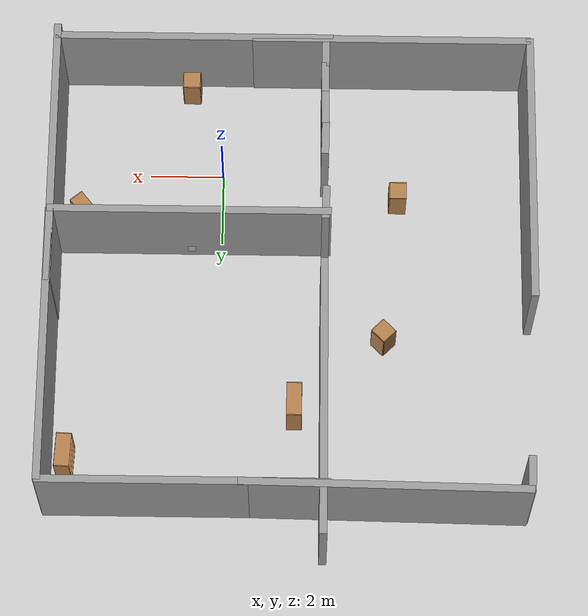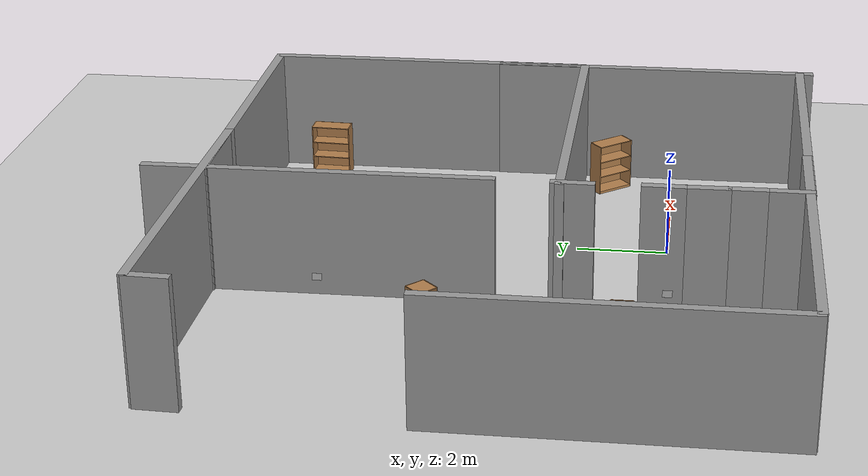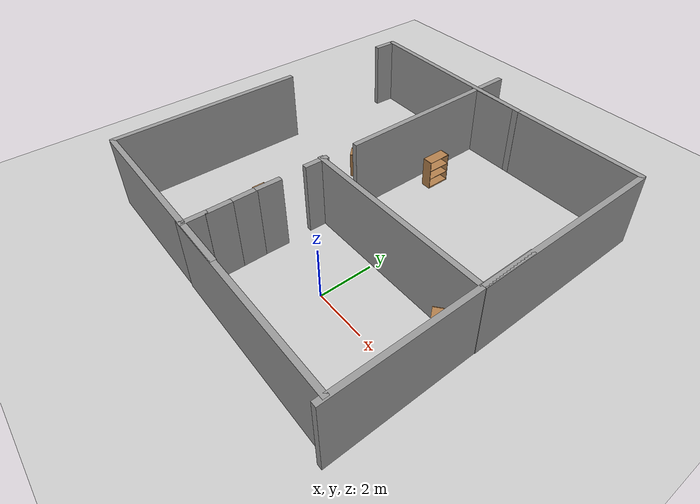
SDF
<sdf version="1.4">
 <world name="default">
  <model name="character">
   <static>1</static>
   <link name="cluedo_character::link">
    <collision name="collision">
     <geometry><plane><normal>0 0 1</normal><size>0.21 0.297</size></plane></geometry>
     <surface><friction><ode><mu>100</mu><mu2>50</mu2></ode></friction></surface>
    </collision>
    <visual name="visual">
     <pose>0.80183 2.31118 0.4 1.57159 0.00159265 3.14159</pose>
     <cast_shadows>0</cast_shadows>
     <geometry><plane><normal>0 0 1</normal><size>0.21 0.297</size></plane></geometry>
     <material>
      <script>
       <uri>model://cluedo_character/materials/scripts</uri>
       <uri>model://cluedo_character/materials/textures</uri>
       <name>Cluedo_character/Image</name>
      </script>
     </material>
    </visual>
    <velocity_decay><linear>0</linear><angular>0</angular></velocity_decay>
   </link>
  </model>
  <light name="sun" type="directional">
   <pose>1 3 1 0 -0 0</pose>
   <diffuse>0.8 0.8 0.8 1</diffuse>
   <specular>1 1 1 1</specular>
   <attenuation>
    <range>1000</range>
    <constant>0.9</constant>
    <linear>0.01</linear>
    <quadratic>0.001</quadratic>
   </attenuation>
   <direction>-0 0 -1</direction>
  </light>
  <light name="light_a" type="point">
   <cast_shadows>0</cast_shadows>
   <pose>1 3 1 0 -0 0</pose>
   <diffuse>0.2 0.2 0.2 1</diffuse>
   <specular>1 1 1 1</specular>
   <attenuation>
    <range>1000</range>
    <constant>0.9</constant>
    <linear>0.01</linear>
    <quadratic>0.001</quadratic>
   </attenuation>
   <direction>0 0 -1</direction>
  </light>
  <light name="light_b" type="point">
   <cast_shadows>0</cast_shadows>
   <pose>-7 6 1 0 -0 0</pose>
   <diffuse>0.2 0.2 0.2 0.2</diffuse>
   <specular>0.2 0.2 0.2 0.2</specular>
   <attenuation>
    <range>1000</range>
    <constant>0.9</constant>
    <linear>0.01</linear>
    <quadratic>0.001</quadratic>
   </attenuation>
   <direction>0 0 -1</direction>
  </light>
  <light name="light_c" type="point">
   <cast_shadows>0</cast_shadows>
   <pose>-2.3 6 1 0 -0 0</pose>
   <diffuse>0.2 0.2 0.2 1</diffuse>
   <specular>1 1 1 1</specular>
   <attenuation>
    <range>1000</range>
    <constant>0.9</constant>
    <linear>0.01</linear>
    <quadratic>0.001</quadratic>
   </attenuation>
   <direction>0 0 -1</direction>
  </light>
  <light name="light_d" type="point">
   <cast_shadows>0</cast_shadows>
   <pose>-7 2 1 0 -0 0</pose>
   <diffuse>0.2 0.2 0.2 1</diffuse>
   <specular>1 1 1 1</specular>
   <attenuation>
    <range>1000</range>
    <constant>0.9</constant>
    <linear>0.01</linear>
    <quadratic>0.001</quadratic>
   </attenuation>
   <direction>0 0 -1</direction>
  </light>
  <model name="ground_plane">
   <static>1</static>
   <link name="link">
    <collision name="collision">
     <geometry><plane><normal>0 0 1</normal><size>100 100</size></plane></geometry>
     <surface><friction><ode><mu>100</mu><mu2>50</mu2></ode></friction></surface>
    </collision>
    <visual name="visual">
     <cast_shadows>0</cast_shadows>
     <geometry><plane><normal>0 0 1</normal><size>100 100</size></plane></geometry>
     <material>
      <script><uri>file://media/materials/scripts/gazebo.material</uri><name>Gazebo/Grey</name></script>
     </material>
    </visual>
    <velocity_decay><linear>0</linear><angular>0</angular></velocity_decay>
   </link>
  </model>
  <physics type="ode">
   <max_step_size>0.001</max_step_size>
   <real_time_factor>1</real_time_factor>
   <real_time_update_rate>1000</real_time_update_rate>
   <gravity>0 0 -9.8</gravity>
  </physics>
  <scene><ambient>0.4 0.4 0.4 1</ambient><background>0.7 0.7 0.7 1</background><shadows>1</shadows></scene>
  <spherical_coordinates>
   <surface_model>EARTH_WGS84</surface_model>
   <latitude_deg>0</latitude_deg>
   <longitude_deg>0</longitude_deg>
   <elevation>0</elevation>
   <heading_deg>0</heading_deg>
  </spherical_coordinates>
  <model name="grey_wall_0">
   <static>1</static>
   <link name="link">
    <pose>0 0 1.4 0 -0 0</pose>
    <collision name="collision"><geometry><box><size>7.5 0.2 2.8</size></box></geometry></collision>
    <visual name="visual">
     <cast_shadows>0</cast_shadows>
     <geometry><box><size>7.5 0.2 2.8</size></box></geometry>
     <material>
      <script>
       <uri>model://grey_wall/materials/scripts</uri>
       <uri>model://grey_wall/materials/textures</uri>
       <name>vrc/grey_wall</name>
      </script>
     </material>
    </visual>
    <velocity_decay><linear>0</linear><angular>0</angular></velocity_decay>
   </link>
   <pose>-4.52424 -2.88365 0 0 -0 0</pose>
  </model>
  <model name="grey_wall_1">
   <static>1</static>
   <link name="link">
    <pose>0 0 1.4 0 -0 0</pose>
    <collision name="collision"><geometry><box><size>7.5 0.2 2.8</size></box></geometry></collision>
    <visual name="visual">
     <cast_shadows>0</cast_shadows>
     <geometry><box><size>7.5 0.2 2.8</size></box></geometry>
     <material>
      <script>
       <uri>model://grey_wall/materials/scripts</uri>
       <uri>model://grey_wall/materials/textures</uri>
       <name>vrc/grey_wall</name>
      </script>
     </material>
    </visual>
    <velocity_decay><linear>0</linear><angular>0</angular></velocity_decay>
   </link>
   <pose>-8.25889 0.789474 0 0 0 -1.57181</pose>
  </model>
  <model name="grey_wall_2">
   <static>1</static>
   <link name="link">
    <pose>0 0 1.4 0 -0 0</pose>
    <collision name="collision"><geometry><box><size>7.5 0.2 2.8</size></box></geometry></collision>
    <visual name="visual">
     <cast_shadows>0</cast_shadows>
     <geometry><box><size>7.5 0.2 2.8</size></box></geometry>
     <material>
      <script>
       <uri>model://grey_wall/materials/scripts</uri>
       <uri>model://grey_wall/materials/textures</uri>
       <name>vrc/grey_wall</name>
      </script>
     </material>
    </visual>
    <velocity_decay><linear>0</linear><angular>0</angular></velocity_decay>
   </link>
   <pose>4.46801 5.95599 0 0 -0 1.57557</pose>
  </model>
  <model name="grey_wall_3">
   <static>1</static>
   <link name="link">
    <pose>0 0 1.4 0 -0 0</pose>
    <collision name="collision"><geometry><box><size>7.5 0.2 2.8</size></box></geometry></collision>
    <visual name="visual">
     <cast_shadows>0</cast_shadows>
     <geometry><box><size>7.5 0.2 2.8</size></box></geometry>
     <material>
      <script>
       <uri>model://grey_wall/materials/scripts</uri>
       <uri>model://grey_wall/materials/textures</uri>
       <name>vrc/grey_wall</name>
      </script>
     </material>
    </visual>
    <velocity_decay><linear>0</linear><angular>0</angular></velocity_decay>
   </link>
   <pose>-4.38608 9.7362 0.00212 0 -0 3.12586</pose>
  </model>
  <model name="grey_wall_4">
   <static>1</static>
   <link name="link">
    <pose>0 0 1.4 0 -0 0</pose>
    <collision name="collision"><geometry><box><size>7.5 0.2 2.8</size></box></geometry></collision>
    <visual name="visual">
     <cast_shadows>0</cast_shadows>
     <geometry><box><size>7.5 0.2 2.8</size></box></geometry>
     <material>
      <script>
       <uri>model://grey_wall/materials/scripts</uri>
       <uri>model://grey_wall/materials/textures</uri>
       <name>vrc/grey_wall</name>
      </script>
     </material>
    </visual>
    <velocity_decay><linear>0</linear><angular>0</angular></velocity_decay>
   </link>
   <pose>0.797239 -2.90496 0 0 -0 0</pose>
  </model>
  <model name="grey_wall_5">
   <static>1</static>
   <link name="link">
    <pose>0 0 1.4 0 -0 0</pose>
    <collision name="collision"><geometry><box><size>7.5 0.2 2.8</size></box></geometry></collision>
    <visual name="visual">
     <cast_shadows>0</cast_shadows>
     <geometry><box><size>7.5 0.2 2.8</size></box></geometry>
     <material>
      <script>
       <uri>model://grey_wall/materials/scripts</uri>
       <uri>model://grey_wall/materials/textures</uri>
       <name>vrc/grey_wall</name>
      </script>
     </material>
    </visual>
    <velocity_decay><linear>0</linear><angular>0</angular></velocity_decay>
   </link>
   <pose>0.80183 2.20914 -0 0 -0 0</pose>
  </model>
  <model name="cabinet">
   <static>1</static>
   <link name="cabinet_bottom_plate">
    <inertial>
     <pose>0 0 -1 0 -0 0</pose>
     <inertia><ixx>2.05</ixx><ixy>0</ixy><ixz>0</ixz><iyy>2.05</iyy><iyz>0</iyz><izz>2.05</izz></inertia>
     <mass>25</mass>
    </inertial>
    <collision name="cabinet_bottom_plate_geom">
     <pose>0 0 0.01 0 -0 0</pose>
     <geometry><box><size>0.45 0.45 0.02</size></box></geometry>
    </collision>
    <visual name="cabinet_bottom_plate_geom_visual">
     <pose>0 0 0.01 0 -0 0</pose>
     <geometry><box><size>0.45 0.45 0.02</size></box></geometry>
     <material>
      <script><uri>file://media/materials/scripts/gazebo.material</uri><name>Gazebo/Wood</name></script>
     </material>
    </visual>
    <collision name="cabinet_bottom_plate_geom_cabinet_back_plate">
     <pose>0.235 0 0.51 0 -0 0</pose>
     <geometry><box><size>0.02 0.45 1.02</size></box></geometry>
    </collision>
    <visual name="cabinet_bottom_plate_geom_cabinet_back_plate_visual">
     <pose>0.235 0 0.51 0 -0 0</pose>
     <geometry><box><size>0.02 0.45 1.02</size></box></geometry>
     <material>
      <script><uri>file://media/materials/scripts/gazebo.material</uri><name>Gazebo/Wood</name></script>
     </material>
    </visual>
    <collision name="cabinet_bottom_plate_geom_cabinet_left_plate">
     <pose>0 0.235 0.51 0 -0 0</pose>
     <geometry><box><size>0.45 0.02 1.02</size></box></geometry>
    </collision>
    <visual name="cabinet_bottom_plate_geom_cabinet_left_plate_visual">
     <pose>0 0.235 0.51 0 -0 0</pose>
     <geometry><box><size>0.45 0.02 1.02</size></box></geometry>
     <material>
      <script><uri>file://media/materials/scripts/gazebo.material</uri><name>Gazebo/Wood</name></script>
     </material>
    </visual>
    <collision name="cabinet_bottom_plate_geom_cabinet_middle_plate">
     <pose>0 0 0.51 0 -0 0</pose>
     <geometry><box><size>0.45 0.45 0.02</size></box></geometry>
    </collision>
    <visual name="cabinet_bottom_plate_geom_cabinet_middle_plate_visual">
     <pose>0 0 0.51 0 -0 0</pose>
     <geometry><box><size>0.45 0.45 0.02</size></box></geometry>
     <material>
      <script><uri>file://media/materials/scripts/gazebo.material</uri><name>Gazebo/Wood</name></script>
     </material>
    </visual>
    <collision name="cabinet_bottom_plate_geom_cabinet_right_plate">
     <pose>0 -0.235 0.51 0 -0 0</pose>
     <geometry><box><size>0.45 0.02 1.02</size></box></geometry>
    </collision>
    <visual name="cabinet_bottom_plate_geom_cabinet_right_plate_visual">
     <pose>0 -0.235 0.51 0 -0 0</pose>
     <geometry><box><size>0.45 0.02 1.02</size></box></geometry>
     <material>
      <script><uri>file://media/materials/scripts/gazebo.material</uri><name>Gazebo/Wood</name></script>
     </material>
    </visual>
    <collision name="cabinet_bottom_plate_geom_cabinet_top_plate">
     <pose>0 0 1.01 0 -0 0</pose>
     <geometry><box><size>0.45 0.45 0.02</size></box></geometry>
    </collision>
    <visual name="cabinet_bottom_plate_geom_cabinet_top_plate_visual">
     <pose>0 0 1.01 0 -0 0</pose>
     <geometry><box><size>0.45 0.45 0.02</size></box></geometry>
     <material>
      <script><uri>file://media/materials/scripts/gazebo.material</uri><name>Gazebo/Wood</name></script>
     </material>
    </visual>
    <velocity_decay><linear>0</linear><angular>0</angular></velocity_decay>
   </link>
   <pose>0.912804 -2.47692 0.028898 0 -0 1.56926</pose>
  </model>
  <model name="bookshelf">
   <static>1</static>
   <link name="link">
    <inertial><mass>1</mass></inertial>
    <collision name="back">
     <pose>0 0.005 0.6 0 -0 0</pose>
     <geometry><box><size>0.9 0.01 1.2</size></box></geometry>
    </collision>
    <visual name="visual1">
     <pose>0 0.005 0.6 0 -0 0</pose>
     <geometry><box><size>0.9 0.01 1.2</size></box></geometry>
     <material>
      <script><uri>file://media/materials/scripts/gazebo.material</uri><name>Gazebo/Wood</name></script>
     </material>
    </visual>
    <collision name="left_side">
     <pose>0.45 -0.195 0.6 0 -0 0</pose>
     <geometry><box><size>0.02 0.4 1.2</size></box></geometry>
    </collision>
    <visual name="visual2">
     <pose>0.45 -0.195 0.6 0 -0 0</pose>
     <geometry><box><size>0.02 0.4 1.2</size></box></geometry>
     <material>
      <script><uri>file://media/materials/scripts/gazebo.material</uri><name>Gazebo/Wood</name></script>
     </material>
    </visual>
    <collision name="right_side">
     <pose>-0.45 -0.195 0.6 0 -0 0</pose>
     <geometry><box><size>0.02 0.4 1.2</size></box></geometry>
    </collision>
    <visual name="visual3">
     <pose>-0.45 -0.195 0.6 0 -0 0</pose>
     <geometry><box><size>0.02 0.4 1.2</size></box></geometry>
     <material>
      <script><uri>file://media/materials/scripts/gazebo.material</uri><name>Gazebo/Wood</name></script>
     </material>
    </visual>
    <collision name="bottom">
     <pose>0 -0.195 0.03 0 -0 0</pose>
     <geometry><box><size>0.88 0.4 0.06</size></box></geometry>
    </collision>
    <visual name="visual4">
     <pose>0 -0.195 0.03 0 -0 0</pose>
     <geometry><box><size>0.88 0.4 0.06</size></box></geometry>
     <material>
      <script><uri>file://media/materials/scripts/gazebo.material</uri><name>Gazebo/Wood</name></script>
     </material>
    </visual>
    <collision name="top">
     <pose>0 -0.195 1.19 0 -0 0</pose>
     <geometry><box><size>0.88 0.4 0.02</size></box></geometry>
    </collision>
    <visual name="visual5">
     <pose>0 -0.195 1.19 0 -0 0</pose>
     <geometry><box><size>0.88 0.4 0.02</size></box></geometry>
     <material>
      <script><uri>file://media/materials/scripts/gazebo.material</uri><name>Gazebo/Wood</name></script>
     </material>
    </visual>
    <collision name="low_shelf">
     <pose>0 -0.195 0.43 0 -0 0</pose>
     <geometry><box><size>0.88 0.4 0.02</size></box></geometry>
    </collision>
    <visual name="visual6">
     <pose>0 -0.195 0.43 0 -0 0</pose>
     <geometry><box><size>0.88 0.4 0.02</size></box></geometry>
     <material>
      <script><uri>file://media/materials/scripts/gazebo.material</uri><name>Gazebo/Wood</name></script>
     </material>
    </visual>
    <collision name="high_shelf">
     <pose>0 -0.195 0.8 0 -0 0</pose>
     <geometry><box><size>0.88 0.4 0.02</size></box></geometry>
    </collision>
    <visual name="visual7">
     <pose>0 -0.195 0.8 0 -0 0</pose>
     <geometry><box><size>0.88 0.4 0.02</size></box></geometry>
     <material>
      <script><uri>file://media/materials/scripts/gazebo.material</uri><name>Gazebo/Wood</name></script>
     </material>
    </visual>
    <velocity_decay><linear>0</linear><angular>0</angular></velocity_decay>
   </link>
   <pose>4.1629 8.35769 0 0 0 -1.61477</pose>
  </model>
  <model name="grey_wall">
   <static>1</static>
   <link name="link">
    <pose>0 0 1.4 0 -0 0</pose>
    <collision name="collision"><geometry><box><size>7.5 0.2 2.8</size></box></geometry></collision>
    <visual name="visual">
     <cast_shadows>0</cast_shadows>
     <geometry><box><size>7.5 0.2 2.8</size></box></geometry>
     <material>
      <script>
       <uri>model://grey_wall/materials/scripts</uri>
       <uri>model://grey_wall/materials/textures</uri>
       <name>vrc/grey_wall</name>
      </script>
     </material>
    </visual>
    <velocity_decay><linear>0</linear><angular>0</angular></velocity_decay>
   </link>
   <pose>4.48033 0.520252 0 0 0 -1.56399</pose>
  </model>
  <model name="grey_wall_8">
   <static>1</static>
   <link name="link">
    <pose>0 0 1.4 0 -0 0</pose>
    <collision name="collision"><geometry><box><size>7.5 0.2 2.8</size></box></geometry></collision>
    <visual name="visual">
     <cast_shadows>0</cast_shadows>
     <geometry><box><size>7.5 0.2 2.8</size></box></geometry>
     <material>
      <script>
       <uri>model://grey_wall/materials/scripts</uri>
       <uri>model://grey_wall/materials/textures</uri>
       <name>vrc/grey_wall</name>
      </script>
     </material>
    </visual>
    <velocity_decay><linear>0</linear><angular>0</angular></velocity_decay>
   </link>
   <pose>-2.79516 7.28836 0 0 -0 1.5757</pose>
  </model>
  <model name="grey_wall_9">
   <static>1</static>
   <link name="link">
    <pose>0 0 1.4 0 -0 0</pose>
    <collision name="collision"><geometry><box><size>7.5 0.2 2.8</size></box></geometry></collision>
    <visual name="visual">
     <cast_shadows>0</cast_shadows>
     <geometry><box><size>7.5 0.2 2.8</size></box></geometry>
     <material>
      <script>
       <uri>model://grey_wall/materials/scripts</uri>
       <uri>model://grey_wall/materials/textures</uri>
       <name>vrc/grey_wall</name>
      </script>
     </material>
    </visual>
    <velocity_decay><linear>0</linear><angular>0</angular></velocity_decay>
   </link>
   <pose>0.766326 9.68138 0 0 -0 0</pose>
  </model>
  <model name="cabinet_0">
   <static>1</static>
   <link name="cabinet_bottom_plate">
    <inertial>
     <pose>0 0 -1 0 -0 0</pose>
     <inertia><ixx>2.05</ixx><ixy>0</ixy><ixz>0</ixz><iyy>2.05</iyy><iyz>0</iyz><izz>2.05</izz></inertia>
     <mass>25</mass>
    </inertial>
    <collision name="cabinet_bottom_plate_geom">
     <pose>0 0 0.01 0 -0 0</pose>
     <geometry><box><size>0.45 0.45 0.02</size></box></geometry>
    </collision>
    <visual name="cabinet_bottom_plate_geom_visual">
     <pose>0 0 0.01 0 -0 0</pose>
     <geometry><box><size>0.45 0.45 0.02</size></box></geometry>
     <material>
      <script><uri>file://media/materials/scripts/gazebo.material</uri><name>Gazebo/Wood</name></script>
     </material>
    </visual>
    <collision name="cabinet_bottom_plate_geom_cabinet_back_plate">
     <pose>0.235 0 0.51 0 -0 0</pose>
     <geometry><box><size>0.02 0.45 1.02</size></box></geometry>
    </collision>
    <visual name="cabinet_bottom_plate_geom_cabinet_back_plate_visual">
     <pose>0.235 0 0.51 0 -0 0</pose>
     <geometry><box><size>0.02 0.45 1.02</size></box></geometry>
     <material>
      <script><uri>file://media/materials/scripts/gazebo.material</uri><name>Gazebo/Wood</name></script>
     </material>
    </visual>
    <collision name="cabinet_bottom_plate_geom_cabinet_left_plate">
     <pose>0 0.235 0.51 0 -0 0</pose>
     <geometry><box><size>0.45 0.02 1.02</size></box></geometry>
    </collision>
    <visual name="cabinet_bottom_plate_geom_cabinet_left_plate_visual">
     <pose>0 0.235 0.51 0 -0 0</pose>
     <geometry><box><size>0.45 0.02 1.02</size></box></geometry>
     <material>
      <script><uri>file://media/materials/scripts/gazebo.material</uri><name>Gazebo/Wood</name></script>
     </material>
    </visual>
    <collision name="cabinet_bottom_plate_geom_cabinet_middle_plate">
     <pose>0 0 0.51 0 -0 0</pose>
     <geometry><box><size>0.45 0.45 0.02</size></box></geometry>
    </collision>
    <visual name="cabinet_bottom_plate_geom_cabinet_middle_plate_visual">
     <pose>0 0 0.51 0 -0 0</pose>
     <geometry><box><size>0.45 0.45 0.02</size></box></geometry>
     <material>
      <script><uri>file://media/materials/scripts/gazebo.material</uri><name>Gazebo/Wood</name></script>
     </material>
    </visual>
    <collision name="cabinet_bottom_plate_geom_cabinet_right_plate">
     <pose>0 -0.235 0.51 0 -0 0</pose>
     <geometry><box><size>0.45 0.02 1.02</size></box></geometry>
    </collision>
    <visual name="cabinet_bottom_plate_geom_cabinet_right_plate_visual">
     <pose>0 -0.235 0.51 0 -0 0</pose>
     <geometry><box><size>0.45 0.02 1.02</size></box></geometry>
     <material>
      <script><uri>file://media/materials/scripts/gazebo.material</uri><name>Gazebo/Wood</name></script>
     </material>
    </visual>
    <collision name="cabinet_bottom_plate_geom_cabinet_top_plate">
     <pose>0 0 1.01 0 -0 0</pose>
     <geometry><box><size>0.45 0.45 0.02</size></box></geometry>
    </collision>
    <visual name="cabinet_bottom_plate_geom_cabinet_top_plate_visual">
     <pose>0 0 1.01 0 -0 0</pose>
     <geometry><box><size>0.45 0.45 0.02</size></box></geometry>
     <material>
      <script><uri>file://media/materials/scripts/gazebo.material</uri><name>Gazebo/Wood</name></script>
     </material>
    </visual>
    <velocity_decay><linear>0</linear><angular>0</angular></velocity_decay>
   </link>
   <pose>-4.76563 0.786225 0 0 -0 0</pose>
  </model>
  <model name="bookshelf_0">
   <static>1</static>
   <link name="link">
    <inertial><mass>1</mass></inertial>
    <collision name="back">
     <pose>0 0.005 0.6 0 -0 0</pose>
     <geometry><box><size>0.9 0.01 1.2</size></box></geometry>
    </collision>
    <visual name="visual1">
     <pose>0 0.005 0.6 0 -0 0</pose>
     <geometry><box><size>0.9 0.01 1.2</size></box></geometry>
     <material>
      <script><uri>file://media/materials/scripts/gazebo.material</uri><name>Gazebo/Wood</name></script>
     </material>
    </visual>
    <collision name="left_side">
     <pose>0.45 -0.195 0.6 0 -0 0</pose>
     <geometry><box><size>0.02 0.4 1.2</size></box></geometry>
    </collision>
    <visual name="visual2">
     <pose>0.45 -0.195 0.6 0 -0 0</pose>
     <geometry><box><size>0.02 0.4 1.2</size></box></geometry>
     <material>
      <script><uri>file://media/materials/scripts/gazebo.material</uri><name>Gazebo/Wood</name></script>
     </material>
    </visual>
    <collision name="right_side">
     <pose>-0.45 -0.195 0.6 0 -0 0</pose>
     <geometry><box><size>0.02 0.4 1.2</size></box></geometry>
    </collision>
    <visual name="visual3">
     <pose>-0.45 -0.195 0.6 0 -0 0</pose>
     <geometry><box><size>0.02 0.4 1.2</size></box></geometry>
     <material>
      <script><uri>file://media/materials/scripts/gazebo.material</uri><name>Gazebo/Wood</name></script>
     </material>
    </visual>
    <collision name="bottom">
     <pose>0 -0.195 0.03 0 -0 0</pose>
     <geometry><box><size>0.88 0.4 0.06</size></box></geometry>
    </collision>
    <visual name="visual4">
     <pose>0 -0.195 0.03 0 -0 0</pose>
     <geometry><box><size>0.88 0.4 0.06</size></box></geometry>
     <material>
      <script><uri>file://media/materials/scripts/gazebo.material</uri><name>Gazebo/Wood</name></script>
     </material>
    </visual>
    <collision name="top">
     <pose>0 -0.195 1.19 0 -0 0</pose>
     <geometry><box><size>0.88 0.4 0.02</size></box></geometry>
    </collision>
    <visual name="visual5">
     <pose>0 -0.195 1.19 0 -0 0</pose>
     <geometry><box><size>0.88 0.4 0.02</size></box></geometry>
     <material>
      <script><uri>file://media/materials/scripts/gazebo.material</uri><name>Gazebo/Wood</name></script>
     </material>
    </visual>
    <collision name="low_shelf">
     <pose>0 -0.195 0.43 0 -0 0</pose>
     <geometry><box><size>0.88 0.4 0.02</size></box></geometry>
    </collision>
    <visual name="visual6">
     <pose>0 -0.195 0.43 0 -0 0</pose>
     <geometry><box><size>0.88 0.4 0.02</size></box></geometry>
     <material>
      <script><uri>file://media/materials/scripts/gazebo.material</uri><name>Gazebo/Wood</name></script>
     </material>
    </visual>
    <collision name="high_shelf">
     <pose>0 -0.195 0.8 0 -0 0</pose>
     <geometry><box><size>0.88 0.4 0.02</size></box></geometry>
    </collision>
    <visual name="visual7">
     <pose>0 -0.195 0.8 0 -0 0</pose>
     <geometry><box><size>0.88 0.4 0.02</size></box></geometry>
     <material>
      <script><uri>file://media/materials/scripts/gazebo.material</uri><name>Gazebo/Wood</name></script>
     </material>
    </visual>
    <velocity_decay><linear>0</linear><angular>0</angular></velocity_decay>
   </link>
   <pose>3.80828 1.61058 0 0 0 -0.882638</pose>
  </model>
  <model name="grey_wall_small">
   <static>1</static>
   <link name="link">
    <pose>0 0 1.4 0 -0 0</pose>
    <collision name="collision"><geometry><box><size>0.9375 0.2 2.8</size></box></geometry></collision>
    <visual name="visual">
     <cast_shadows>0</cast_shadows>
     <geometry><box><size>0.9375 0.2 2.8</size></box></geometry>
     <material>
      <script>
       <uri>model://grey_wall_small/materials/scripts</uri>
       <uri>model://grey_wall_small/materials/textures</uri>
       <name>vrc/grey_wall_small</name>
      </script>
     </material>
    </visual>
    <velocity_decay><linear>0</linear><angular>0</angular></velocity_decay>
   </link>
   <pose>-2.77082 0.070351 0 0 -0 1.55684</pose>
  </model>
  <model name="grey_wall_small_0">
   <static>1</static>
   <link name="link">
    <pose>0 0 1.4 0 -0 0</pose>
    <collision name="collision"><geometry><box><size>0.9375 0.2 2.8</size></box></geometry></collision>
    <visual name="visual">
     <cast_shadows>0</cast_shadows>
     <geometry><box><size>0.9375 0.2 2.8</size></box></geometry>
     <material>
      <script>
       <uri>model://grey_wall_small/materials/scripts</uri>
       <uri>model://grey_wall_small/materials/textures</uri>
       <name>vrc/grey_wall_small</name>
      </script>
     </material>
    </visual>
    <velocity_decay><linear>0</linear><angular>0</angular></velocity_decay>
   </link>
   <pose>-8.0858 9.37106 0 0 -0 1.53565</pose>
  </model>
  <model name="grey_wall_small_1">
   <static>1</static>
   <link name="link">
    <pose>0 0 1.4 0 -0 0</pose>
    <collision name="collision"><geometry><box><size>0.9375 0.2 2.8</size></box></geometry></collision>
    <visual name="visual">
     <cast_shadows>0</cast_shadows>
     <geometry><box><size>0.9375 0.2 2.8</size></box></geometry>
     <material>
      <script>
       <uri>model://grey_wall_small/materials/scripts</uri>
       <uri>model://grey_wall_small/materials/textures</uri>
       <name>vrc/grey_wall_small</name>
      </script>
     </material>
    </visual>
    <velocity_decay><linear>0</linear><angular>0</angular></velocity_decay>
   </link>
   <pose>-2.76235 -2.52749 0 0 -0 1.5606</pose>
  </model>
  <model name="grey_wall_small_2">
   <static>1</static>
   <link name="link">
    <pose>0 0 1.4 0 -0 0</pose>
    <collision name="collision"><geometry><box><size>0.9375 0.2 2.8</size></box></geometry></collision>
    <visual name="visual">
     <cast_shadows>0</cast_shadows>
     <geometry><box><size>0.9375 0.2 2.8</size></box></geometry>
     <material>
      <script>
       <uri>model://grey_wall_small/materials/scripts</uri>
       <uri>model://grey_wall_small/materials/textures</uri>
       <name>vrc/grey_wall_small</name>
      </script>
     </material>
    </visual>
    <velocity_decay><linear>0</linear><angular>0</angular></velocity_decay>
   </link>
   <pose>-2.76778 -0.83425 0 0 -0 1.58194</pose>
  </model>
  <model name="grey_wall_small_3">
   <static>1</static>
   <link name="link">
    <pose>0 0 1.4 0 -0 0</pose>
    <collision name="collision"><geometry><box><size>0.9375 0.2 2.8</size></box></geometry></collision>
    <visual name="visual">
     <cast_shadows>0</cast_shadows>
     <geometry><box><size>0.9375 0.2 2.8</size></box></geometry>
     <material>
      <script>
       <uri>model://grey_wall_small/materials/scripts</uri>
       <uri>model://grey_wall_small/materials/textures</uri>
       <name>vrc/grey_wall_small</name>
      </script>
     </material>
    </visual>
    <velocity_decay><linear>0</linear><angular>0</angular></velocity_decay>
   </link>
   <pose>-2.80278 1.94327 0 0 -0 1.55571</pose>
  </model>
  <model name="grey_wall_small_4">
   <static>1</static>
   <link name="link">
    <pose>0 0 1.4 0 -0 0</pose>
    <collision name="collision"><geometry><box><size>0.9375 0.2 2.8</size></box></geometry></collision>
    <visual name="visual">
     <cast_shadows>0</cast_shadows>
     <geometry><box><size>0.9375 0.2 2.8</size></box></geometry>
     <material>
      <script>
       <uri>model://grey_wall_small/materials/scripts</uri>
       <uri>model://grey_wall_small/materials/textures</uri>
       <name>vrc/grey_wall_small</name>
      </script>
     </material>
    </visual>
    <velocity_decay><linear>0</linear><angular>0</angular></velocity_decay>
   </link>
   <pose>-2.75744 -1.69975 0 0 -0 1.57871</pose>
  </model>
  <model name="red_image">
   <static>1</static>
   <link name="link">
    <collision name="collision">
     <geometry><plane><normal>0 0 1</normal><size>0.21 0.16</size></plane></geometry>
     <surface><friction><ode><mu>100</mu><mu2>50</mu2></ode></friction></surface>
    </collision>
    <visual name="visual">
     <pose>-2.88 -0.084214 0.4 1.57 1.11022e-16 -1.57319</pose>
     <cast_shadows>0</cast_shadows>
     <geometry><plane><normal>0 0 1</normal><size>0.21 0.16</size></plane></geometry>
     <material>
      <script>
       <uri>model://red_image/materials/scripts</uri>
       <uri>model://red_image/materials/textures</uri>
       <name>red_image/Image</name>
      </script>
     </material>
    </visual>
    <velocity_decay><linear>0</linear><angular>0</angular></velocity_decay>
   </link>
  </model>
  <model name="green_image">
   <static>1</static>
   <link name="link">
    <collision name="collision">
     <geometry><plane><normal>0 0 1</normal><size>0.21 0.16</size></plane></geometry>
     <surface><friction><ode><mu>100</mu><mu2>50</mu2></ode></friction></surface>
    </collision>
    <visual name="visual">
     <pose>-2.89701 7.35086 0.4 1.57 1.11022e-16 -1.57319</pose>
     <cast_shadows>0</cast_shadows>
     <geometry><plane><normal>0 0 1</normal><size>0.21 0.16</size></plane></geometry>
     <material>
      <script>
       <uri>model://green_image/materials/scripts</uri>
       <uri>model://green_image/materials/textures</uri>
       <name>green_image/Image</name>
      </script>
     </material>
    </visual>
    <velocity_decay><linear>0</linear><angular>0</angular></velocity_decay>
   </link>
  </model>
  <model name="bookshelf_1">
   <static>1</static>
   <link name="link">
    <inertial><mass>1</mass></inertial>
    <collision name="back">
     <pose>0 0.005 0.6 0 -0 0</pose>
     <geometry><box><size>0.9 0.01 1.2</size></box></geometry>
    </collision>
    <visual name="visual1">
     <pose>0 0.005 0.6 0 -0 0</pose>
     <geometry><box><size>0.9 0.01 1.2</size></box></geometry>
     <material>
      <script><uri>file://media/materials/scripts/gazebo.material</uri><name>Gazebo/Wood</name></script>
     </material>
    </visual>
    <collision name="left_side">
     <pose>0.45 -0.195 0.6 0 -0 0</pose>
     <geometry><box><size>0.02 0.4 1.2</size></box></geometry>
    </collision>
    <visual name="visual2">
     <pose>0.45 -0.195 0.6 0 -0 0</pose>
     <geometry><box><size>0.02 0.4 1.2</size></box></geometry>
     <material>
      <script><uri>file://media/materials/scripts/gazebo.material</uri><name>Gazebo/Wood</name></script>
     </material>
    </visual>
    <collision name="right_side">
     <pose>-0.45 -0.195 0.6 0 -0 0</pose>
     <geometry><box><size>0.02 0.4 1.2</size></box></geometry>
    </collision>
    <visual name="visual3">
     <pose>-0.45 -0.195 0.6 0 -0 0</pose>
     <geometry><box><size>0.02 0.4 1.2</size></box></geometry>
     <material>
      <script><uri>file://media/materials/scripts/gazebo.material</uri><name>Gazebo/Wood</name></script>
     </material>
    </visual>
    <collision name="bottom">
     <pose>0 -0.195 0.03 0 -0 0</pose>
     <geometry><box><size>0.88 0.4 0.06</size></box></geometry>
    </collision>
    <visual name="visual4">
     <pose>0 -0.195 0.03 0 -0 0</pose>
     <geometry><box><size>0.88 0.4 0.06</size></box></geometry>
     <material>
      <script><uri>file://media/materials/scripts/gazebo.material</uri><name>Gazebo/Wood</name></script>
     </material>
    </visual>
    <collision name="top">
     <pose>0 -0.195 1.19 0 -0 0</pose>
     <geometry><box><size>0.88 0.4 0.02</size></box></geometry>
    </collision>
    <visual name="visual5">
     <pose>0 -0.195 1.19 0 -0 0</pose>
     <geometry><box><size>0.88 0.4 0.02</size></box></geometry>
     <material>
      <script><uri>file://media/materials/scripts/gazebo.material</uri><name>Gazebo/Wood</name></script>
     </material>
    </visual>
    <collision name="low_shelf">
     <pose>0 -0.195 0.43 0 -0 0</pose>
     <geometry><box><size>0.88 0.4 0.02</size></box></geometry>
    </collision>
    <visual name="visual6">
     <pose>0 -0.195 0.43 0 -0 0</pose>
     <geometry><box><size>0.88 0.4 0.02</size></box></geometry>
     <material>
      <script><uri>file://media/materials/scripts/gazebo.material</uri><name>Gazebo/Wood</name></script>
     </material>
    </visual>
    <collision name="high_shelf">
     <pose>0 -0.195 0.8 0 -0 0</pose>
     <geometry><box><size>0.88 0.4 0.02</size></box></geometry>
    </collision>
    <visual name="visual7">
     <pose>0 -0.195 0.8 0 -0 0</pose>
     <geometry><box><size>0.88 0.4 0.02</size></box></geometry>
     <material>
      <script><uri>file://media/materials/scripts/gazebo.material</uri><name>Gazebo/Wood</name></script>
     </material>
    </visual>
    <velocity_decay><linear>0</linear><angular>0</angular></velocity_decay>
   </link>
   <pose>-2.22159 6.87767 0 0 -0 1.56891</pose>
  </model>
  <model name="cabinet_1">
   <static>1</static>
   <link name="cabinet_bottom_plate">
    <inertial>
     <pose>0 0 -1 0 -0 0</pose>
     <inertia><ixx>2.05</ixx><ixy>0</ixy><ixz>0</ixz><iyy>2.05</iyy><iyz>0</iyz><izz>2.05</izz></inertia>
     <mass>25</mass>
    </inertial>
    <collision name="cabinet_bottom_plate_geom">
     <pose>0 0 0.01 0 -0 0</pose>
     <geometry><box><size>0.45 0.45 0.02</size></box></geometry>
    </collision>
    <visual name="cabinet_bottom_plate_geom_visual">
     <pose>0 0 0.01 0 -0 0</pose>
     <geometry><box><size>0.45 0.45 0.02</size></box></geometry>
     <material>
      <script><uri>file://media/materials/scripts/gazebo.material</uri><name>Gazebo/Wood</name></script>
     </material>
    </visual>
    <collision name="cabinet_bottom_plate_geom_cabinet_back_plate">
     <pose>0.235 0 0.51 0 -0 0</pose>
     <geometry><box><size>0.02 0.45 1.02</size></box></geometry>
    </collision>
    <visual name="cabinet_bottom_plate_geom_cabinet_back_plate_visual">
     <pose>0.235 0 0.51 0 -0 0</pose>
     <geometry><box><size>0.02 0.45 1.02</size></box></geometry>
     <material>
      <script><uri>file://media/materials/scripts/gazebo.material</uri><name>Gazebo/Wood</name></script>
     </material>
    </visual>
    <collision name="cabinet_bottom_plate_geom_cabinet_left_plate">
     <pose>0 0.235 0.51 0 -0 0</pose>
     <geometry><box><size>0.45 0.02 1.02</size></box></geometry>
    </collision>
    <visual name="cabinet_bottom_plate_geom_cabinet_left_plate_visual">
     <pose>0 0.235 0.51 0 -0 0</pose>
     <geometry><box><size>0.45 0.02 1.02</size></box></geometry>
     <material>
      <script><uri>file://media/materials/scripts/gazebo.material</uri><name>Gazebo/Wood</name></script>
     </material>
    </visual>
    <collision name="cabinet_bottom_plate_geom_cabinet_middle_plate">
     <pose>0 0 0.51 0 -0 0</pose>
     <geometry><box><size>0.45 0.45 0.02</size></box></geometry>
    </collision>
    <visual name="cabinet_bottom_plate_geom_cabinet_middle_plate_visual">
     <pose>0 0 0.51 0 -0 0</pose>
     <geometry><box><size>0.45 0.45 0.02</size></box></geometry>
     <material>
      <script><uri>file://media/materials/scripts/gazebo.material</uri><name>Gazebo/Wood</name></script>
     </material>
    </visual>
    <collision name="cabinet_bottom_plate_geom_cabinet_right_plate">
     <pose>0 -0.235 0.51 0 -0 0</pose>
     <geometry><box><size>0.45 0.02 1.02</size></box></geometry>
    </collision>
    <visual name="cabinet_bottom_plate_geom_cabinet_right_plate_visual">
     <pose>0 -0.235 0.51 0 -0 0</pose>
     <geometry><box><size>0.45 0.02 1.02</size></box></geometry>
     <material>
      <script><uri>file://media/materials/scripts/gazebo.material</uri><name>Gazebo/Wood</name></script>
     </material>
    </visual>
    <collision name="cabinet_bottom_plate_geom_cabinet_top_plate">
     <pose>0 0 1.01 0 -0 0</pose>
     <geometry><box><size>0.45 0.45 0.02</size></box></geometry>
    </collision>
    <visual name="cabinet_bottom_plate_geom_cabinet_top_plate_visual">
     <pose>0 0 1.01 0 -0 0</pose>
     <geometry><box><size>0.45 0.45 0.02</size></box></geometry>
     <material>
      <script><uri>file://media/materials/scripts/gazebo.material</uri><name>Gazebo/Wood</name></script>
     </material>
    </visual>
    <velocity_decay><linear>0</linear><angular>0</angular></velocity_decay>
   </link>
   <pose>-4.38337 4.86587 0 0 -0 0.78721</pose>
  </model>
 </world>
</sdf>
